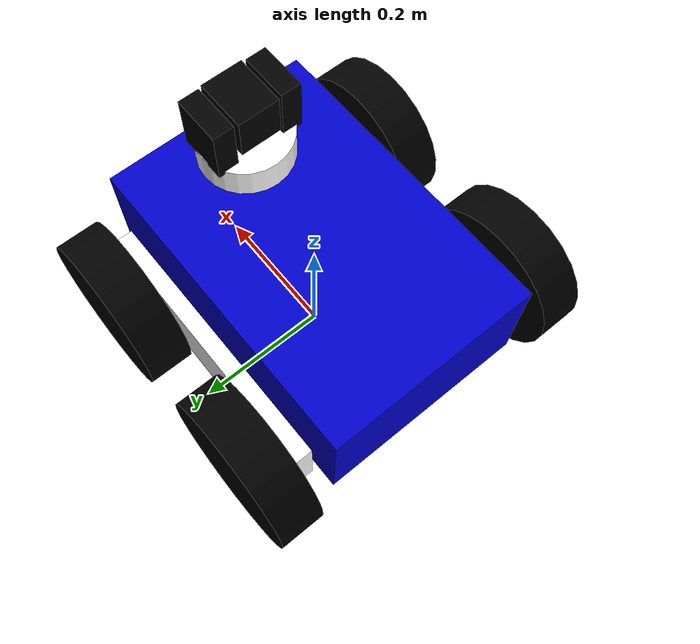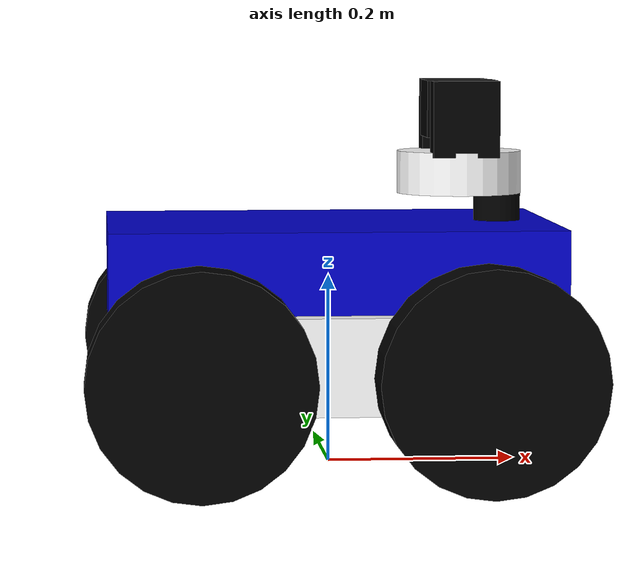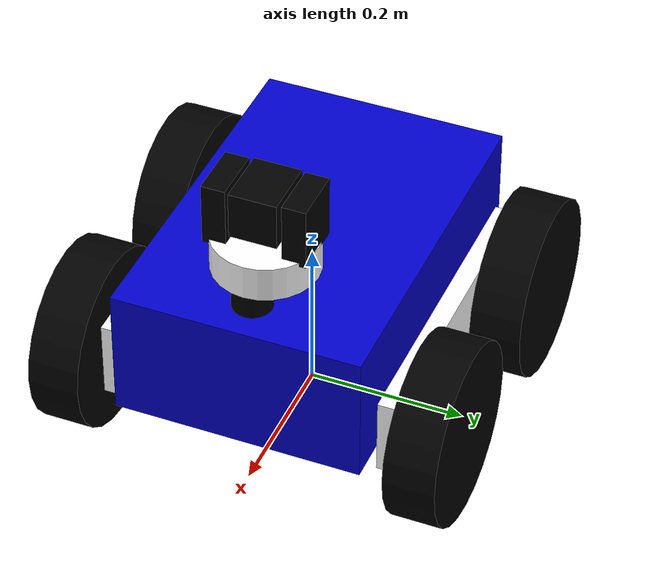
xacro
<?xml version="1.0"?>
<robot xmlns:xacro="http://ros.org/wiki/xacro"
       xmlns:xi="http://www.w3.org/2001/XInclude"
       xmlns:gazebo="http://playerstage.sourceforge.net/gazebo/xmlschema/#gz"
       xmlns:model="http://playerstage.sourceforge.net/gazebo/xmlschema/#model"
       xmlns:sensor="http://playerstage.sourceforge.net/gazebo/xmlschema/#sensor"
       xmlns:body="http://playerstage.sourceforge.net/gazebo/xmlschema/#body"
       xmlns:geom="http://playerstage.sourceforge.net/gazebo/xmlschema/#geom"
       xmlns:joint="http://playerstage.sourceforge.net/gazebo/xmlschema/#joint"
       xmlns:interface="http://playerstage.sourceforge.net/gazebo/xmlschema/#interface"
       xmlns:rendering="http://playerstage.sourceforge.net/gazebo/xmlschema/#rendering"
       xmlns:renderable="http://playerstage.sourceforge.net/gazebo/xmlschema/#renderable"
       xmlns:controller="http://playerstage.sourceforge.net/gazebo/xmlschema/#controller"
       xmlns:physics="http://playerstage.sourceforge.net/gazebo/xmlschema/#physics"
       name="mrvk" >

    <!-- common stuff -->

    <xacro:include filename="$(find mrvk_description)/urdf/materials.urdf.xacro" />
    <xacro:include filename="$(find mrvk_description)/urdf/common.urdf.xacro" />
    <xacro:include filename="$(find mrvk_description)/urdf/mrvk.urdf.xacro" />

    <xacro:include filename="$(find mrvk_sensors)/urdf/camera_macro.xacro" />
    <xacro:include filename="$(find mrvk_sensors)/urdf/gps_macro.xacro"/>
    <xacro:include filename="$(find adis16488)/urdf/adis_macro.xacro"/>

    <!-- Used for fixing robot to Gazebo -->
    <!-- arm -->
    <xacro:mrvk_base parent="world" end_point = "base_end_point">
        <origin xyz="0 0 0" rpy="0 0 0" />
    </xacro:mrvk_base>
    <xacro:Adis parent="base_stabilized" child = "adis16488">
        <origin rpy = "0 0 0" xyz="0.0 0.0 0.099"/>
    </xacro:Adis>
    <xacro:Gps parent="base_stabilized" child = "gps">
        <origin rpy="0 0 0" xyz="0 0 2"/>
    </xacro:Gps>
    <xacro:Camera parent="base_stabilized" child = "camera_frame">
        <origin rpy="1.80 0 1.57" xyz="0.1 -0.070 0.489"/>
    </xacro:Camera>

</robot>

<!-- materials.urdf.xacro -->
<robot name="mrvk" xmlns:xacro="http://ros.org/wiki/xacro">

<material name="Black">
    <color rgba="0.0 0.0 0.0 1.0"/>
</material>

<material name="Blue">
    <color rgba="0.0 0.0 0.8 1.0"/>
</material>

<material name="Green">
    <color rgba="0.0 0.8 0.0 1.0"/>
</material>

<material name="Grey">
    <color rgba="0.2 0.2 0.2 1.0"/>
</material>

<material name="White">
    <color rgba="1.0 1.0 1.0 1.0"/>
</material>

    <material name= "kinect">
        <color rgba="0.2 0.2 0.2 1.0"/>
    </material>

</robot>

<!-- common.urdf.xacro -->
<robot name="kv01" xmlns:xacro="http://ros.org/wiki/xacro">

  <xacro:macro name = "inertia_zaklad">
    <inertia ixx="0.1" ixy="0.0" ixz="0.0" iyy="0.1" iyz="0.0" izz="0.1"/>
  </xacro:macro>

  <xacro:macro name = "inertia_motor">
    <inertia ixx="1" ixy="0.0" ixz="0.0" iyy="1" iyz="0.0" izz="1"/>
  </xacro:macro>

  <xacro:macro name="dynamika">
    <dynamics fricction = "1" damping ="1"/>
  </xacro:macro>

<xacro:macro name="gazebo_def_part" params="part material">
  <gazebo reference="${part}">
    <mu1>0.5</mu1>
    <mu2>0.5</mu2>
    <turnGravityOff>false</turnGravityOff>
    <material>Gazebo/${material}</material>
  </gazebo>
</xacro:macro>

<xacro:macro name="klb_vlastnosti" params="meno">
  <gadzebo reference="${meno}">
    <erp>0.1</erp>
    <stopKd value="1000000.0" />
    <stopKp value="10000.0" />
    <fudgeFactor value="0.3" />
    <implicitSpringDamper>true</implicitSpringDamper>
  </gadzebo>
</xacro:macro>

<xacro:macro name="klb_def" params="meno">
  <gadzebo reference="${meno}">
  </gadzebo>
</xacro:macro>

<!--parametre-->

  <xacro:property name="M_PI" value="3.14159"/>
  <xacro:property name="WHEEL_RADIUS" value="0.115"/>
  <xacro:property name="ODOMETRY_CONSTANT" value="0.006546076617684" />

</robot>

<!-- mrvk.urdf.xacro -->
<robot xmlns:xacro="http://ros.org/wiki/xacro"
       xmlns:xi="http://www.w3.org/2001/XInclude"
       xmlns:gazebo="http://playerstage.sourceforge.net/gazebo/xmlschema/#gz"
       xmlns:model="http://playerstage.sourceforge.net/gazebo/xmlschema/#model"
       xmlns:sensor="http://playerstage.sourceforge.net/gazebo/xmlschema/#sensor"
       xmlns:body="http://playerstage.sourceforge.net/gazebo/xmlschema/#body"
       xmlns:geom="http://playerstage.sourceforge.net/gazebo/xmlschema/#geom"
       xmlns:joint="http://playerstage.sourceforge.net/gazebo/xmlschema/#joint"
       xmlns:interface="http://playerstage.sourceforge.net/gazebo/xmlschema/#interface"
       xmlns:rendering="http://playerstage.sourceforge.net/gazebo/xmlschema/#rendering"
       xmlns:renderable="http://playerstage.sourceforge.net/gazebo/xmlschema/#renderable"
       xmlns:controller="http://playerstage.sourceforge.net/gazebo/xmlschema/#controller"
       xmlns:physics="http://playerstage.sourceforge.net/gazebo/xmlschema/#physics"
       name="mrvk" >

    <xacro:macro name="mrvk_base" params="parent *origin end_point">

        <link name="base_link"/>

        <joint name="base_to_stabilizer" type="fixed">
            <origin xyz="0 0 0.174"/>
            <parent link="base_link"/>
            <child link="base_stabilized"/>
        </joint>
        <!--todo narazniky -->
        <link name="base_stabilized">
            <visual>
                <geometry>
                    <box size="0.47 .315 .168"/>
                </geometry>
                <origin xyz="0 0 0"/>
                <material name="Blue"/>
            </visual>
            <inertial>
                <mass value="10"/>
                <inertia_zaklad/>
            </inertial>
            <collision>
                <geometry>
                    <box size="0.5 .31 .30"/>
                </geometry>
                <origin xyz="0 0 0.08"/>
            </collision>
        </link>

        <link name="laser">
            <visual>
                <geometry>
                    <cylinder length="0.03" radius="0.025"/>
                </geometry>
                <material name="Black"/>
            </visual>
            <inertial>
                <mass value="0.1"/>
                <xacro:inertia_zaklad/>
            </inertial>
        </link>

        <joint name="base_to_scan" type="fixed">
            <parent link="base_stabilized"/>
            <child link="laser"/>
            <origin xyz="0.181 0 0.099"/>
        </joint>

        <link name="veza">
            <visual>
                <geometry>
                    <cylinder length="0.045" radius="0.0665"/>
                </geometry>
                <material name="White"/>
            </visual>
            <inertial>
                <mass value="0.3"/>
                <inertia_zaklad/>
            </inertial>
        </link>

        <joint name="scan_to_veza" type="revolute"><!--todo premenovat na base_to_veza-->
            <parent link="base_stabilized"/>
            <child link="veza"/>
            <origin xyz="0.14 0 0.136"/>
            <axis xyz="0 0 1"/>
            <limit effort="30.0" lower="-2.09439" upper="${M_PI}" velocity="5"/>
        </joint>

        <link name="camera_l">
            <visual>
                <geometry>
                    <box size="0.07 .03 .08"/>
                </geometry>
                <material name="Black"/>
            </visual>
            <inertial>
                <mass value="0.1"/>
                <inertia_zaklad/>

            </inertial>
        </link>

        <joint name="veza_to_camera_l" type="fixed">
            <parent link="veza"/>
            <child link="camera_l"/>
            <origin xyz="0 0.05 0.0575"/>
        </joint>

        <link name="camera_r">
            <visual>
                <geometry>
                    <box size="0.07 .03 .08"/>
                </geometry>
                <material name="Black"/>
            </visual>
            <inertial>
                <mass value="0.1"/>
                <inertia_zaklad/>

            </inertial>
        </link>

        <joint name="veza_to_camera_r" type="fixed">
            <parent link="veza"/>
            <child link="camera_r"/>
            <origin xyz="0 -0.05 0.0575"/>
        </joint>

        <link name="camera">
            <visual>
                <geometry>
                    <box size="0.075 .06 .06"/>
                </geometry>
                <material name="Black"/>
            </visual>
            <inertial>
                <mass value="0.4"/>
                <inertia_zaklad/>

            </inertial>
        </link>

        <joint name="camera_r_to_camera" type="revolute">
            <limit effort="30.0" lower="-0.523598" upper="${M_PI/2}" velocity="5"/>
            <parent link="camera_r"/>
            <child link="camera"/>
            <origin rpy=" ${M_PI/2} 0 0" xyz="0 0.05 0.01"/>
            <axis xyz="0 0 1"/>
        </joint>

        <link name="wheel_frame_l">
            <visual>
                <geometry>
                    <box size="0.4 .025 .1"/>
                </geometry>
                <material name="White"/>
            </visual>
            <inertial>
                <mass value="1.3"/>
                <inertia_zaklad/>
            </inertial>
        </link>

        <joint name="wheel_joint_left" type="continuous">
            <!--limit rychlosti v impulzoch za 10ms-->
            <limit effort="30.0" velocity="${1000*ODOMETRY_CONSTANT}"/>
            <parent link="wheel_frame_l"/>
            <child link="wheel_frame_l_rotation"/>
            <origin rpy="${-M_PI/2} 0 0"/>
            <axis xyz="0 0 1"/>
        </joint>

        <link name="wheel_frame_l_rotation">
        </link>

        <joint name="base_link_to_wheel_frame_l" type="fixed">
            <parent link="base_stabilized"/>
            <child link="wheel_frame_l"/>
            <origin xyz="0 +0.1775 -0.05"/>
            <axis xyz="0 1 0"/>
        </joint>

        <link name="wheel_frame_r">
            <visual>
                <geometry>
                    <box size="0.4 .025 .1"/>
                </geometry>
                <material name="White"/>
            </visual>
            <inertial>
                <mass value="1.3"/>
                <inertia_zaklad/>
            </inertial>
        </link>

        <joint name="wheel_joint_right" type="continuous">
            <!--limit rychlosti v impulzoch za 10ms-->
            <limit effort="30.0" velocity="${1000*ODOMETRY_CONSTANT}"/>
            <parent link="wheel_frame_r"/>
            <child link="wheel_frame_r_rotation"/>
            <origin rpy="${M_PI/2} 0 0"/>
            <axis xyz="0 0 -1"/>
        </joint>

        <link name="wheel_frame_r_rotation">
        </link>

        <joint name="base_link_to_wheel_frame_r" type="fixed">
            <parent link="base_stabilized"/>
            <child link="wheel_frame_r"/>
            <origin xyz="0 -0.1775 -0.05"/>
            <axis xyz="0 1 0"/>
        </joint>

        <link name="wheel_lp">
            <visual>
                <geometry>
                    <cylinder radius="${WHEEL_RADIUS}" length="0.065"/>
                </geometry>
                <material name="Black"/>
            </visual>
            <inertial>
                <mass value="0.5"/>
                <inertia_zaklad/>
            </inertial>
            <collision>
                <geometry>
                    <cylinder radius="${WHEEL_RADIUS}" length="0.065"/>
                </geometry>
            </collision>
        </link>

        <joint name="wheel_frame_l_to_wheel_lp" type="continuous">
            <parent link="wheel_frame_l"/>
            <child link="wheel_lp"/>
            <origin rpy=" ${M_PI/2} 0 0" xyz="0.145 0.05 -0.01"/>
            <axis xyz="0 0 1"/>
            <mimic joint= "wheel_joint_left" multiplier="-1" />
        </joint>

        <link name="wheel_lz">
            <visual>
                <geometry>
                    <cylinder radius="${WHEEL_RADIUS}" length="0.065"/>
                </geometry>
                <material name="Black"/>
            </visual>
            <inertial>
                <mass value="0.5"/>
                <inertia_zaklad/>
            </inertial>
            <collision>
                <geometry>
                    <cylinder radius="${WHEEL_RADIUS}" length="0.065"/>
                </geometry>
            </collision>
        </link>

        <joint name="wheel_frame_l_to_wheel_lz" type="continuous">
            <parent link="wheel_frame_l"/>
            <child link="wheel_lz"/>
            <origin rpy=" ${M_PI/2} 0 0" xyz="-0.145 0.05 -0.01"/>
            <axis xyz="0 0 1"/>
            <mimic joint= "wheel_joint_left" multiplier="-1" />
        </joint>

        <link name="wheel_pp">
            <visual>
                <geometry>
                    <cylinder radius="${WHEEL_RADIUS}" length="0.065"/>
                </geometry>
                <material name="Black"/>
            </visual>
            <inertial>
                <mass value="0.5"/>
                <inertia_zaklad/>
            </inertial>
            <collision>
                <geometry>
                    <cylinder radius="${WHEEL_RADIUS}" length="0.065"/>
                </geometry>
            </collision>
        </link>

        <joint name="wheel_frame_r_to_wheel_pp" type="continuous">
            <parent link="wheel_frame_r"/>
            <child link="wheel_pp"/>
            <origin rpy=" ${M_PI/2} 0 0" xyz="0.145 -0.05 -0.01"/>
            <axis xyz="0 0 1"/>
            <mimic joint= "wheel_joint_right" multiplier="-1" />
        </joint>

        <link name="wheel_pz">
            <visual>
                <geometry>
                    <cylinder radius="${WHEEL_RADIUS}" length="0.065"/>
                </geometry>
                <material name="Black"/>
            </visual>
            <inertial>
                <mass value="0.5"/>
                <inertia_zaklad/>

            </inertial>
            <collision>
                <geometry>
                    <cylinder radius="${WHEEL_RADIUS}" length="0.065"/>
                </geometry>
            </collision>
        </link>

        <joint name="wheel_frame_r_to_wheel_pz" type="continuous">
            <parent link="wheel_frame_r"/>
            <child link="wheel_pz"/>
            <origin rpy=" ${M_PI/2} 0 0" xyz="-0.145 -0.05 -0.01"/>
            <axis xyz="0 0 1"/>
            <mimic joint= "wheel_joint_right" multiplier="-1" />
        </joint>

        <joint name="end_point_connetion" type="fixed">
            <parent link="base_stabilized"/>
            <child link="${end_point}"/>
            <origin rpy="0 0 0" xyz="0 0 0"/>
            <axis xyz="0 0 1"/>
        </joint>

        <link name="${end_point}"/>

        <transmission name="mrvk_left_transmission">
            <type>transmission_interface/SimpleTransmission</type>
            <joint name="wheel_joint_left">
                <hardwareInterface>hardware_interface/VelocityJointInterface</hardwareInterface>
            </joint>
            <actuator name="mrvk_motor_left">
                <hardwareInterface>hardware_interface/VelocityJointInterface</hardwareInterface>
                <mechanicalReduction>${1/ODOMETRY_CONSTANT}</mechanicalReduction>
            </actuator>
        </transmission>
        <transmission name="mrvk_right_transmission">
            <type>transmission_interface/SimpleTransmission</type>
            <joint name="wheel_joint_right">
                <hardwareInterface>hardware_interface/VelocityJointInterface</hardwareInterface>
            </joint>
            <actuator name="mrvk_motor_right">
                <hardwareInterface>hardware_interface/VelocityJointInterface</hardwareInterface>
                <mechanicalReduction>${1/ODOMETRY_CONSTANT}</mechanicalReduction>
            </actuator>
        </transmission>
        <!--${1/ODOMETRY_CONSTANT/WHEEL_RADIUS}-->

        <transmission name="camera_horizontal_transmission">
            <type>transmission_interface/SimpleTransmission</type>
            <joint name="scan_to_veza">
                <hardwareInterface>hardware_interface/PositionJointInterface</hardwareInterface>
            </joint>
            <actuator name="camera_horizontal_motor">
                <hardwareInterface>hardware_interface/PositionJointInterface</hardwareInterface>
                <mechanicalReduction>1</mechanicalReduction>
            </actuator>
        </transmission>
        <transmission name="camera_vertical_transmission">
            <type>transmission_interface/SimpleTransmission</type>
            <joint name="camera_r_to_camera">
                <hardwareInterface>hardware_interface/PositionJointInterface</hardwareInterface>
            </joint>
            <actuator name="camera_vertical_motor">
                <hardwareInterface>hardware_interface/PositionJointInterface</hardwareInterface>
                <mechanicalReduction>1</mechanicalReduction>
            </actuator>
        </transmission>
    </xacro:macro>

</robot>

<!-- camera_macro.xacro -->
<robot xmlns:xacro="http://ros.org/wiki/xacro">
    <xacro:macro name = "Camera" params="parent child *origin">
        <joint name="camera_joint" type="fixed">
            <xacro:insert_block name="origin" />
            <parent link="${parent}"/>
            <child link="${child}"/>
        </joint>

        <link name = "${child}"/>
    </xacro:macro>
</robot>

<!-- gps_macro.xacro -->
<robot xmlns:xacro="http://ros.org/wiki/xacro">
    <xacro:macro name = "Gps" params="parent child *origin">
        <joint name="gps_joint" type="fixed">
            <xacro:insert_block name="origin" />
            <parent link="${parent}"/>
            <child link="${child}"/>
        </joint>

        <link name = "${child}"/>
    </xacro:macro>
</robot>

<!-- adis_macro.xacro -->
<robot xmlns:xacro="http://ros.org/wiki/xacro">
    <xacro:macro name = "Adis" params="parent child *origin">
        <joint name="adis16350_joint" type="fixed">
            <xacro:insert_block name="origin" />
            <parent link="${parent}"/>
            <child link="${child}"/>
        </joint>

        <link name = "${child}"/>
      </xacro:macro>
</robot>
